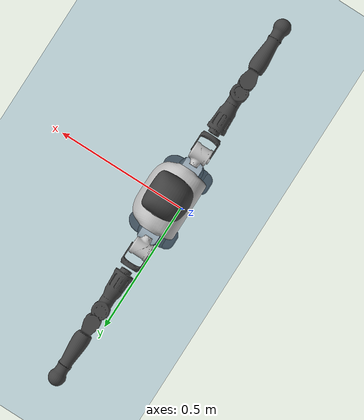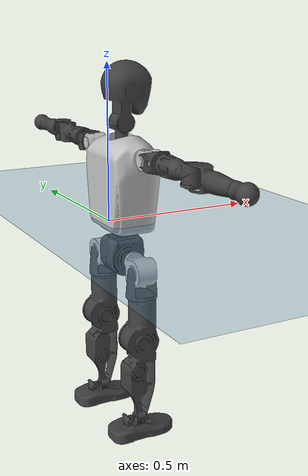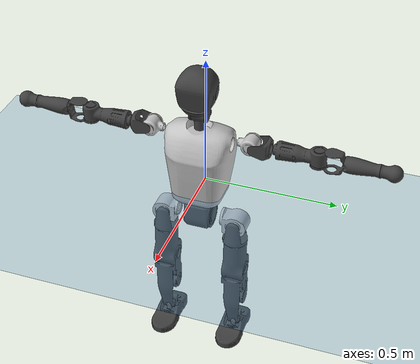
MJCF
<mujoco model="T1">
  <compiler angle="radian" assetdir="assets" balanceinertia="true" inertiafromgeom="false"/>

  <option timestep="0.005" density="1.2" viscosity="2e-05"/>

  <size nkey="1"/>

  <visual>
    <quality shadowsize="8192"/>
    <map shadowclip="0.5"/>
  </visual>

  <default>
    <default class="/">
      <joint armature="0.01" damping="0.01" frictionloss="0.1"/>
      <geom contype="0" conaffinity="0" group="1" solref="-1000 -80"/>
      <site size="0.01 0.005 0.005" group="5"/>
      <general forcelimited="true" biastype="affine" gainprm="25" biasprm="0 -25 -0.6"/>
      <default class="t1">
        <geom rgba="0.25 0.25 0.25 1"/>
        <default class="visual">
          <geom type="mesh" group="2"/>
        </default>
        <default class="collision">
          <geom group="3"/>
        </default>
        <default class="foot">
          <geom size="0.1115 0.05 0.015" type="box" condim="6" group="4" priority="1" solimp="0.015 1 0.015"/>
        </default>
        <default class="reward_collision_sphere">
          <geom group="5" rgba="1 0 0 1"/>
        </default>
      </default>
    </default>
  </default>

  <asset>
    <texture type="skybox" colorspace="auto" name="//unnamed_texture_0" builtin="gradient" rgb1="0.95 0.95 0.95" rgb2="0.95 0.95 0.95" width="100" height="600"/>
    <texture type="2d" colorspace="auto" name="texplane" builtin="checker" rgb1="0.345 0.575 0.748" rgb2="0.345 0.575 0.748" markrgb="1 1 1" width="512" height="512"/>
    <material name="MatPlane" class="/" texture="texplane" texuniform="true" texrepeat="2 2" specular="0.9"/>
    <mesh name="Trunk" class="/" file="Trunk.stl"/>
    <mesh name="H1" class="/" file="H1.stl"/>
    <mesh name="H2" class="/" file="H2.stl"/>
    <mesh name="AL1" class="/" file="AL1.stl"/>
    <mesh name="AL2" class="/" file="AL2.stl"/>
    <mesh name="AL3" class="/" file="AL3.stl"/>
    <mesh name="left_hand_link" class="/" file="left_hand_link.stl"/>
    <mesh name="AR1" class="/" file="AR1.stl"/>
    <mesh name="AR2" class="/" file="AR2.stl"/>
    <mesh name="AR3" class="/" file="AR3.stl"/>
    <mesh name="right_hand_link" class="/" file="right_hand_link.stl"/>
    <mesh name="Waist" class="/" file="Waist.stl"/>
    <mesh name="Hip_Pitch_Left" class="/" file="Hip_Pitch_Left.stl"/>
    <mesh name="Hip_Roll_Left" class="/" file="Hip_Roll_Left.stl"/>
    <mesh name="Hip_Yaw_Left" class="/" file="Hip_Yaw_Left.stl"/>
    <mesh name="Shank_Left" class="/" file="Shank_Left.stl"/>
    <mesh name="Ankle_Cross_Left" class="/" file="Ankle_Cross_Left.stl"/>
    <mesh name="left_foot_link" class="/" file="left_foot_link.stl"/>
    <mesh name="Hip_Pitch_Right" class="/" file="Hip_Pitch_Right.stl"/>
    <mesh name="Hip_Roll_Right" class="/" file="Hip_Roll_Right.stl"/>
    <mesh name="Hip_Yaw_Right" class="/" file="Hip_Yaw_Right.stl"/>
    <mesh name="Shank_Right" class="/" file="Shank_Right.stl"/>
    <mesh name="Ankle_Cross_Right" class="/" file="Ankle_Cross_Right.stl"/>
    <mesh name="right_foot_link" class="/" file="right_foot_link.stl"/>
  </asset>

  <worldbody>
    <geom name="floor" class="/" size="100 100 0.125" type="plane" group="0" material="MatPlane"/>
    <light name="toplight_shadow" class="/" pos="0 0 5" dir="0.0990148 0.0990148 -0.990148" type="directional" ambient="0.04 0.04 0.04" diffuse="0.55 0.55 0.55" specular="0.12 0.12 0.12"/>
    <light name="toplight_fill" class="/" pos="0 0 5" dir="0.0990148 0.0990148 -0.990148" type="directional" castshadow="false" ambient="0.04 0.04 0.04" diffuse="0.3 0.3 0.3" specular="0.08 0.08 0.08"/>
    <body name="trunk" childclass="t1" pos="-0.000153763 -0.00175234 -0.00144307" quat="1 -9.60488e-05 -4.01931e-05 9.75627e-06">
      <inertial pos="0.04523 0.00100298 0.111437" quat="0.999737 0.00426941 -0.0224614 0.00152318" mass="12.915" diaginertia="0.0261472 0.289292 0.065421"/>
      <joint name="//unnamed_joint_0" type="free" armature="0" damping="0" frictionloss="0"/>
      <geom name="//unnamed_geom_1" class="visual" rgba="0.76 0.76 0.76 1" mesh="Trunk"/>
      <geom name="//unnamed_geom_2" class="collision" size="0.0784683 0.104624 0.156937" pos="0.0470173 0 0.124956" type="box"/>
      <geom name="//unnamed_geom_3" class="reward_collision_sphere" size="0.120318" pos="0.0470173 0 0.10413"/>
      <geom name="//unnamed_geom_4" class="reward_collision_sphere" size="0.0156937" pos="0.0470173 0.111674 0"/>
      <geom name="//unnamed_geom_5" class="reward_collision_sphere" size="0.0156937" pos="0.0470173 -0.111674 0"/>
      <geom name="//unnamed_geom_6" class="reward_collision_sphere" size="0.0156937" pos="0.0470173 0.140578 0.187434"/>
      <geom name="//unnamed_geom_7" class="reward_collision_sphere" size="0.0156937" pos="0.0470173 -0.140578 0.187434"/>
      <site name="imu" pos="-0.013698 -0.0121983 0.00332062" size="0.0104624"/>
      <camera name="track" pos="0 -2.62762 0" quat="0.707107 0.707107 0 0" mode="trackcom"/>
      <camera name="ego_camera" pos="0.0956019 0 0.437346" quat="-0.5 -0.5 0.5 0.5"/>
      <body name="H1" pos="0.04629 -0.00244891 0.254977" quat="1 0.000122091 -0.000158937 -0.000113558">
        <inertial pos="-0.00107388 -0.000927927 0.060094" quat="0.769161 -0.00964953 0.00833991 0.638928" mass="0.496433" diaginertia="7.06584e-05 0.0008561 0.000182394"/>
        <joint name="AAHead_yaw" pos="0 0 0" axis="0.00698188 -0.0064644 0.999955" range="-1.57081 1.53187" armature="0.0110557" damping="0.0252375" frictionloss="0.101108"/>
        <geom name="//unnamed_geom_8" class="visual" mesh="H1"/>
        <body name="H2" pos="-0.000459771 -0.0018644 0.0616477" quat="1 -6.82021e-05 0.000314834 -0.000107422">
          <inertial pos="0.00379838 -0.000303278 0.101303" quat="0.988813 0.0992883 -0.0732941 -0.0837797" mass="0.715573" diaginertia="0.00060181 0.00744041 0.00216451"/>
          <joint name="Head_pitch" pos="0 0 0" axis="0.000536123 -1 -0.000129179" stiffness="8.63873e-05" range="-1.20543 0.346666" armature="0.0101682" damping="0.00959414" frictionloss="0.0897307"/>
          <geom name="//unnamed_geom_9" class="visual" mesh="H2"/>
          <geom name="//unnamed_geom_10" class="collision" size="0.0836995" pos="0.00783622 0 0.114543"/>
          <geom name="//unnamed_geom_11" class="reward_collision_sphere" size="0.094162" pos="0.0156724 0 0.10413"/>
        </body>
      </body>
      <body name="AL1" pos="0.0431409 0.139116 0.225768" quat="0.999999 0.000623816 0.000730242 -0.000794984">
        <inertial pos="-0.000544557 0.056509 -0.00240236" quat="0.500023 0.492035 -0.510769 0.496984" mass="0.615246" diaginertia="0.000414567 0.00521094 0.000355789"/>
        <joint name="Left_Shoulder_Pitch" pos="0 0 0" axis="-0.000951241 0.999999 -0.00123533" stiffness="0.00151571" range="-3.30141 1.26891" armature="0.0102312" damping="0" frictionloss="0.105905"/>
        <geom name="//unnamed_geom_12" class="visual" rgba="0.76 0.76 0.76 1" mesh="AL1"/>
        <body name="AL2" pos="0.000550991 0.0645103 -0.00285189" quat="0.999999 0.00124403 -0.000363928 -0.000340915">
          <inertial pos="0.00492392 0.0510318 0.0025664" quat="0.489784 0.508337 -0.490146 0.511334" mass="0.186224" diaginertia="0.000116631 0.001335 0.000218729"/>
          <joint name="Left_Shoulder_Roll" pos="0 0 0" axis="-0.999991 0.00280772 -0.00322984" range="-1.57636 1.74243" armature="0.0107852" damping="0.00499011" frictionloss="0.104454"/>
          <geom name="//unnamed_geom_13" class="visual" mesh="AL2"/>
          <body name="AL3" pos="0.000798936 0.0804722 0.0031984" quat="1 9.23147e-05 -0.000130898 -0.000161401">
            <inertial pos="-0.00176757 0.111174 -0.00297038" quat="0.702886 0.711178 0.0079908 -0.0106699" mass="1.24631" diaginertia="0.00387951 0.0515286 0.00079331"/>
            <joint name="Left_Elbow_Pitch" pos="0 0 0" axis="0.000266813 -0.999933 -0.0115312" stiffness="0.00518307" range="-2.28319 2.30524" armature="0.0107756" damping="0.0240073" frictionloss="0.105216"/>
            <geom name="//unnamed_geom_14" class="visual" mesh="AL3"/>
            <geom name="//unnamed_geom_15" class="collision" size="0.0313873 0.0784683" pos="0 0.0656905 0" quat="0.707105 0.707108 0 0" type="cylinder"/>
            <geom name="//unnamed_geom_16" class="reward_collision_sphere" size="0.0376648"/>
            <body name="left_hand_link" pos="0.00256249 0.195358 -0.00118" quat="1 -0.000205397 -0.00013929 -0.000109243">
              <inertial pos="-0.00096382 0.144961 -0.000520055" quat="0.708335 0.705861 -0.00138813 0.00451774" mass="0.372717" diaginertia="0.00233641 0.0320157 0.000265939"/>
              <joint name="Left_Elbow_Yaw" pos="0 0 0" axis="-9.75839e-05 -0.00290388 0.999996" stiffness="0.00432703" range="-2.48011 0.0171229" armature="0.0103745" damping="0.00688844" frictionloss="0.118346"/>
              <geom name="//unnamed_geom_17" class="visual" mesh="left_hand_link"/>
              <geom name="//unnamed_geom_18" class="collision" size="0.0313873 0.0915464" pos="0 0.170795 0" quat="0.707105 0.707108 0 0" type="cylinder"/>
              <geom name="//unnamed_geom_19" class="reward_collision_sphere" size="0.0523122"/>
              <geom name="//unnamed_geom_20" class="reward_collision_sphere" size="0.0366185" pos="0 0.144519 0"/>
              <geom name="//unnamed_geom_21" class="reward_collision_sphere" size="0.0366185" pos="0 0.282469 0"/>
            </body>
          </body>
        </body>
      </body>
      <body name="AR1" pos="0.0466157 -0.138974 0.227026" quat="0.999999 0.000515971 0.00069117 -0.00114089">
        <inertial pos="-0.0035836 -0.0588434 -0.00185887" quat="0.501834 0.489811 -0.509792 0.498357" mass="0.640578" diaginertia="0.00041424 0.00534824 0.000380287"/>
        <joint name="Right_Shoulder_Pitch" pos="0 0 0" axis="-0.00684636 -0.999975 -0.00185324" stiffness="0.000365374" range="-1.23056 3.30598" armature="0.0100695" damping="0" frictionloss="0.0970002"/>
        <geom name="//unnamed_geom_22" class="visual" rgba="0.76 0.76 0.76 1" mesh="AR1"/>
        <body name="AR2" pos="-0.000734827 -0.0612137 0.00220937" quat="1 -5.1273e-06 -0.000159633 7.00689e-05">
          <inertial pos="0.000155852 -0.050759 6.24196e-05" quat="0.510738 0.48565 -0.518963 0.483703" mass="0.184528" diaginertia="0.000125105 0.00136632 0.000228454"/>
          <joint name="Right_Shoulder_Roll" pos="0 0 0" axis="-0.999998 0.0014379 -0.0013799" range="-1.74433 1.56929" armature="0.0104175" damping="0.00319728" frictionloss="0.108239"/>
          <geom name="//unnamed_geom_23" class="visual" mesh="AR2"/>
          <body name="AR3" pos="0.00161499 -0.0772743 -0.00226246" quat="0.999999 -0.000150013 -0.000742938 -0.00132045">
            <inertial pos="0.00092756 -0.111141 -0.000301151" quat="0.707275 0.706796 -0.00895873 0.0110144" mass="1.2039" diaginertia="0.00394252 0.051037 0.000771423"/>
            <joint name="Right_Elbow_Pitch" pos="0 0 0" axis="-0.00661188 0.999967 -0.00480312" stiffness="0.000753621" range="-2.25488 2.29174" armature="0.01046" damping="0.0106154" frictionloss="0.103864"/>
            <geom name="//unnamed_geom_24" class="visual" mesh="AR3"/>
            <geom name="//unnamed_geom_25" class="collision" size="0.0313873 0.0784683" pos="0 -0.0656905 0" quat="0.707105 0.707108 0 0" type="cylinder"/>
            <geom name="//unnamed_geom_26" class="reward_collision_sphere" size="0.0376648"/>
            <body name="right_hand_link" pos="-0.00164293 -0.190999 0.000931419" quat="0.999999 -3.74409e-05 0.000452986 0.00138755">
              <inertial pos="-0.000217827 -0.141125 0.00250089" quat="0.706552 0.707661 -0.000394641 -9.11894e-05" mass="0.382811" diaginertia="0.00249377 0.0329756 0.000263834"/>
              <joint name="Right_Elbow_Yaw" pos="0 0 0" axis="0.00329736 -0.0025975 0.999991" range="0.0529487 2.43859" armature="0.0110475" damping="0.00461261" frictionloss="0.113363"/>
              <geom name="//unnamed_geom_27" class="visual" mesh="right_hand_link"/>
              <geom name="//unnamed_geom_28" class="collision" size="0.0313873 0.0915464" pos="0 -0.170795 0" quat="0.707105 0.707108 0 0" type="cylinder"/>
              <geom name="//unnamed_geom_29" class="reward_collision_sphere" size="0.0523122"/>
              <geom name="//unnamed_geom_30" class="reward_collision_sphere" size="0.0366185" pos="0 -0.144519 0"/>
              <geom name="//unnamed_geom_31" class="reward_collision_sphere" size="0.0366185" pos="0 -0.282469 0"/>
            </body>
          </body>
        </body>
      </body>
      <body name="Waist" pos="0.0449621 -0.00123065 -0.120482" quat="1 0.000844877 -5.57202e-05 0.000430317">
        <inertial pos="0.00116337 -0.000210996 0.00743874" quat="0.983327 0.00427136 -0.181795 0.00038173" mass="2.75701" diaginertia="0.00151101 0.0202351 0.00572231"/>
        <joint name="Waist" pos="0 0 0" axis="0.000493252 -0.00865963 0.999962" range="-1.62411 1.58034" armature="0.0118099" damping="0.0227024" frictionloss="0.102977"/>
        <geom name="//unnamed_geom_32" class="visual" mesh="Waist"/>
        <body name="Hip_Pitch_Left" pos="-3.29799e-05 0.141028 -0.000823263" quat="1 3.62957e-05 0.000206169 -8.37634e-05">
          <inertial pos="0.00123924 -0.00715848 -0.0161744" quat="0.973194 0.228511 0.0256239 0.00442013" mass="1.19958" diaginertia="0.000536421 0.00594643 0.00155252"/>
          <joint name="Left_Hip_Pitch" pos="0 0 0" axis="-0.00407493 0.999988 0.00261848" stiffness="0.00808239" range="-1.79384 1.60654" armature="0.0112578" damping="0.0233401" frictionloss="0.113348"/>
          <geom name="//unnamed_geom_33" class="visual" rgba="0.76 0.76 0.76 1" mesh="Hip_Pitch_Left"/>
          <body name="Hip_Roll_Left" pos="0.00137031 -0.00312931 -0.0228706" quat="1 -9.90936e-05 0.000532551 0.000304553">
            <inertial pos="-0.00173279 0.000105268 -0.0534039" quat="0.709499 -0.00724063 -0.0117721 0.704571" mass="0.441771" diaginertia="0.000509028 0.00626124 0.000645972"/>
            <joint name="Left_Hip_Roll" pos="0 0 0" axis="-0.999947 -4.70064e-05 0.0103417" stiffness="0.00865478" range="-1.56855 0.203145" armature="0.0113834" damping="0.00395133" frictionloss="0.0902883"/>
            <geom name="//unnamed_geom_34" class="visual" mesh="Hip_Roll_Left"/>
            <geom name="//unnamed_geom_35" class="reward_collision_sphere" size="0.0575434"/>
            <body name="Hip_Yaw_Left" pos="-0.00302404 7.86808e-05 -0.0848298" quat="1 0.00011243 -0.00020172 -0.000102382">
              <inertial pos="-0.00785418 0.00105484 -0.0928964" quat="0.696912 -0.0367656 -0.0280383 0.715665" mass="2.4566" diaginertia="0.00772424 0.0972947 0.00322328"/>
              <joint name="Left_Hip_Yaw" pos="0 0 0" axis="0.00401269 -0.00274268 -0.999988" range="-1.0637 1.04638" armature="0.0105595" damping="0" frictionloss="0.101791"/>
              <geom name="//unnamed_geom_36" class="visual" mesh="Hip_Yaw_Left"/>
              <geom name="//unnamed_geom_37" class="collision" size="0.0523122 0.0836995" type="cylinder"/>
              <body name="Shank_Left" pos="-0.00985887 -0.000758787 -0.13813" quat="1 0.000177246 0.00039118 5.63031e-05">
                <inertial pos="-0.00477145 0.00276573 -0.127385" quat="0.997593 0.0010295 -0.0231602 0.0653531" mass="1.97796" diaginertia="0.0103686 0.137705 0.00230839"/>
                <joint name="Left_Knee_Pitch" pos="0 0 0" axis="-0.00164016 0.999998 -0.00140358" stiffness="0.00714568" range="0.0480422 2.29207" armature="0.0103846" damping="0.0162735" frictionloss="0.103129"/>
                <geom name="//unnamed_geom_38" class="visual" mesh="Shank_Left"/>
                <geom name="//unnamed_geom_39" class="collision" size="0.0523122 0.0784683" pos="0 0 -0.124956" type="cylinder"/>
                <geom name="//unnamed_geom_40" class="reward_collision_sphere" size="0.0680059"/>
                <body name="Ankle_Cross_Left" pos="0.000803106 -0.00105544 -0.289436" quat="1 -0.000101596 3.0107e-05 0.000377467">
                  <inertial pos="-0.00499896 0.00287864 -0.00563892" quat="0.454892 0.547617 0.545142 0.44273" mass="0.0874058" diaginertia="8.93494e-06 9.80591e-05 1.4028e-05"/>
                  <joint name="Left_Ankle_Pitch" pos="0 0 0" axis="0.000777819 0.999998 -0.00175143" range="-0.833051 0.34466" armature="0.00923742" damping="0.00227613" frictionloss="0.110573"/>
                  <geom name="//unnamed_geom_41" class="visual" mesh="Ankle_Cross_Left"/>
                  <body name="left_foot_link" pos="-0.00220513 -0.00269017 -0.0112209" quat="0.999999 0.000942205 0.000619844 3.02473e-05">
                    <inertial pos="-0.00297344 0.000181552 -0.0119681" quat="-0.00202851 0.616362 -0.000127033 0.78746" mass="0.752758" diaginertia="0.000754969 0.00938362 0.00262734"/>
                    <joint name="Left_Ankle_Roll" pos="0 0 0" axis="-0.999997 9.90064e-05 0.00245926" range="-0.455698 0.43973" armature="0.0103471" damping="0.00373156" frictionloss="0.10571"/>
                    <geom name="//unnamed_geom_42" class="visual" mesh="left_foot_link"/>
                    <geom name="left_foot" class="foot" size="0.111706 0.0473625 0.0147201" pos="0.00783622 0 -0.0156195"/>
                    <geom name="//unnamed_geom_44" class="reward_collision_sphere" size="0.0544047" pos="0.00783622 0 -0.0156195"/>
                    <geom name="//unnamed_geom_45" class="reward_collision_sphere" size="0.0313873" pos="0.0744441 -0.0302177 -0.0156195"/>
                    <geom name="//unnamed_geom_46" class="reward_collision_sphere" size="0.0313873" pos="-0.0548536 -0.0302177 -0.0156195"/>
                    <site name="left_foot" class="foot" pos="0.00783622 0 -0.0156195" size="0.0104624"/>
                  </body>
                </body>
              </body>
            </body>
          </body>
        </body>
        <body name="Hip_Pitch_Right" pos="0.000244311 -0.138268 0.00198057" quat="1 -0.00034762 -0.000562777 0.000556617">
          <inertial pos="-0.00229997 0.00859863 -0.0163996" quat="0.972869 -0.230559 0.018968 -0.00277501" mass="1.21335" diaginertia="0.0005532 0.00587082 0.00156913"/>
          <joint name="Right_Hip_Pitch" pos="0 0 0" axis="0.000520132 -1 0.000554823" range="-1.56852 1.77665" armature="0.00898605" damping="0.0103597" frictionloss="0.106282"/>
          <geom name="//unnamed_geom_47" class="visual" rgba="0.76 0.76 0.76 1" mesh="Hip_Pitch_Right"/>
          <body name="Hip_Roll_Right" pos="0.000981347 -0.000583024 -0.0231216" quat="0.999999 0.000304564 -0.000930199 0.00108899">
            <inertial pos="0.0014122 0.00155387 -0.0529985" quat="0.70256 -0.00781405 -0.00441258 0.711568" mass="0.425776" diaginertia="0.000515032 0.00603266 0.000619288"/>
            <joint name="Right_Hip_Roll" pos="0 0 0" axis="-0.999999 -0.000999838 -0.00120158" range="-0.185075 1.55838" armature="0.0103993" damping="0.0139511" frictionloss="0.118374"/>
            <geom name="//unnamed_geom_48" class="visual" mesh="Hip_Roll_Right"/>
            <geom name="//unnamed_geom_49" class="reward_collision_sphere" size="0.0575434"/>
            <body name="Hip_Yaw_Right" pos="-0.00166582 -0.000927905 -0.0853915" quat="1 -0.000152827 -0.000521229 -9.21821e-05">
              <inertial pos="-0.0051534 -0.00285085 -0.0946215" quat="0.715852 -0.0301176 -0.0404971 0.696426" mass="2.51181" diaginertia="0.00761333 0.103627 0.00309622"/>
              <joint name="Right_Hip_Yaw" pos="0 0 0" axis="-0.00339381 0.00234491 -0.999991" range="-1.01588 1.01415" armature="0.0116858" damping="0.00801289" frictionloss="0.105084"/>
              <geom name="//unnamed_geom_50" class="visual" mesh="Hip_Yaw_Right"/>
              <geom name="//unnamed_geom_51" class="collision" size="0.0523122 0.0836995" type="cylinder"/>
              <body name="Shank_Right" pos="-0.0127036 0.000570998 -0.138031" quat="0.999999 0.000744872 0.000918889 0.000689829">
                <inertial pos="-0.00500894 0.000187663 -0.130409" quat="0.999074 -0.000164844 -0.0279861 -0.0326774" mass="2.07128" diaginertia="0.0103974 0.133588 0.00245459"/>
                <joint name="Right_Knee_Pitch" pos="0 0 0" axis="0.000521009 -0.999943 -0.0107053" stiffness="0.00914778" range="-2.30298 0.0279363" armature="0.0111591" damping="0.0192715" frictionloss="0.106333"/>
                <geom name="//unnamed_geom_52" class="visual" mesh="Shank_Right"/>
                <geom name="//unnamed_geom_53" class="collision" size="0.0523122 0.0784683" pos="0 0 -0.124956" type="cylinder"/>
                <geom name="//unnamed_geom_54" class="reward_collision_sphere" size="0.0680059"/>
                <body name="Ankle_Cross_Right" pos="-0.00204797 0.00035034 -0.2907" quat="1 7.93707e-05 -5.23589e-05 1.19097e-05">
                  <inertial pos="-0.00329727 -0.00255791 -0.00844813" quat="0.446402 0.554203 0.543722 0.444917" mass="0.0877183" diaginertia="8.83424e-06 0.000103992 1.46766e-05"/>
                  <joint name="Right_Ankle_Pitch" pos="0 0 0" axis="0.00233851 -0.999927 -0.0118213" range="-0.397271 0.824503" armature="0.0105354" damping="0.00626035" frictionloss="0.103622"/>
                  <geom name="//unnamed_geom_55" class="visual" mesh="Ankle_Cross_Right"/>
                  <body name="right_foot_link" pos="0.00180017 -0.00107912 -0.0148333" quat="1 0.000114945 -7.92929e-06 -0.00015211">
                    <inertial pos="-0.00135038 -0.000457641 -0.00953429" quat="-0.000563965 0.620134 0.00212769 0.784493" mass="0.779188" diaginertia="0.000787674 0.00895676 0.00262431"/>
                    <joint name="Right_Ankle_Roll" pos="0 0 0" axis="-0.999924 0.00206398 -0.0121268" range="-0.469989 0.438633" armature="0.00987092" damping="0.00161458" frictionloss="0.100958"/>
                    <geom name="//unnamed_geom_56" class="visual" mesh="right_foot_link"/>
                    <geom name="right_foot" class="foot" size="0.108458 0.0449842 0.0145352" pos="0.00783622 0 -0.0156195"/>
                    <geom name="//unnamed_geom_58" class="reward_collision_sphere" size="0.0418498"/>
                    <geom name="//unnamed_geom_59" class="reward_collision_sphere" size="0.0313873" pos="0.00783622 0 -0.0156195"/>
                    <geom name="//unnamed_geom_60" class="reward_collision_sphere" size="0.0313873" pos="0.0744441 0.0302177 -0.0156195"/>
                    <geom name="//unnamed_geom_61" class="reward_collision_sphere" size="0.0313873" pos="-0.0548536 0.0302177 -0.0156195"/>
                    <site name="right_foot" class="foot" pos="0.00783622 0 -0.0156195" size="0.0104624"/>
                  </body>
                </body>
              </body>
            </body>
          </body>
        </body>
      </body>
    </body>
  </worldbody>

  <contact>
    <pair class="/" geom1="floor" geom2="left_foot" name="//unnamed_contact_0"/>
    <pair class="/" geom1="floor" geom2="right_foot" name="//unnamed_contact_1"/>
  </contact>

  <actuator>
    <general name="AAHead_yaw" class="/" joint="AAHead_yaw" forcerange="-7.59271 7.59271" gainprm="24.1871" biasprm="0 -24.1871 -0.616146"/>
    <general name="Head_pitch" class="/" joint="Head_pitch" forcerange="-7.31807 7.31807" gainprm="24.1871" biasprm="0 -24.1871 -0.616146"/>
    <general name="Left_Shoulder_Pitch" class="/" joint="Left_Shoulder_Pitch" forcerange="-16.7074 16.7074" gainprm="24.1871" biasprm="0 -24.1871 -0.616146"/>
    <general name="Left_Shoulder_Roll" class="/" joint="Left_Shoulder_Roll" forcerange="-17.7737 17.7737" gainprm="24.1871" biasprm="0 -24.1871 -0.616146"/>
    <general name="Left_Elbow_Pitch" class="/" joint="Left_Elbow_Pitch" forcerange="-18.7614 18.7614" gainprm="24.1871" biasprm="0 -24.1871 -0.616146"/>
    <general name="Left_Elbow_Yaw" class="/" joint="Left_Elbow_Yaw" forcerange="-18.0444 18.0444" gainprm="24.1871" biasprm="0 -24.1871 -0.616146"/>
    <general name="Right_Shoulder_Pitch" class="/" joint="Right_Shoulder_Pitch" forcerange="-20.106 20.106" gainprm="24.1871" biasprm="0 -24.1871 -0.616146"/>
    <general name="Right_Shoulder_Roll" class="/" joint="Right_Shoulder_Roll" forcerange="-16.9272 16.9272" gainprm="24.1871" biasprm="0 -24.1871 -0.616146"/>
    <general name="Right_Elbow_Pitch" class="/" joint="Right_Elbow_Pitch" forcerange="-20.0827 20.0827" gainprm="24.1871" biasprm="0 -24.1871 -0.616146"/>
    <general name="Right_Elbow_Yaw" class="/" joint="Right_Elbow_Yaw" forcerange="-19.8067 19.8067" gainprm="24.1871" biasprm="0 -24.1871 -0.616146"/>
    <general name="Waist" class="/" joint="Waist" forcerange="-33.9189 33.9189" gainprm="24.1871" biasprm="0 -24.1871 -0.616146"/>
    <general name="Left_Hip_Pitch" class="/" joint="Left_Hip_Pitch" forcerange="-46.3711 46.3711" gainprm="24.1871" biasprm="0 -24.1871 -0.616146"/>
    <general name="Left_Hip_Roll" class="/" joint="Left_Hip_Roll" forcerange="-34.5583 34.5583" gainprm="24.1871" biasprm="0 -24.1871 -0.616146"/>
    <general name="Left_Hip_Yaw" class="/" joint="Left_Hip_Yaw" forcerange="-28.4364 28.4364" gainprm="24.1871" biasprm="0 -24.1871 -0.616146"/>
    <general name="Left_Knee_Pitch" class="/" joint="Left_Knee_Pitch" forcerange="-60.5216 60.5216" gainprm="24.1871" biasprm="0 -24.1871 -0.616146"/>
    <general name="Left_Ankle_Pitch" class="/" joint="Left_Ankle_Pitch" forcerange="-20.5887 20.5887" gainprm="24.1871" biasprm="0 -24.1871 -0.616146"/>
    <general name="Left_Ankle_Roll" class="/" joint="Left_Ankle_Roll" forcerange="-17.0167 17.0167" gainprm="24.1871" biasprm="0 -24.1871 -0.616146"/>
    <general name="Right_Hip_Pitch" class="/" joint="Right_Hip_Pitch" forcerange="-47.2343 47.2343" gainprm="24.1871" biasprm="0 -24.1871 -0.616146"/>
    <general name="Right_Hip_Roll" class="/" joint="Right_Hip_Roll" forcerange="-31.6108 31.6108" gainprm="24.1871" biasprm="0 -24.1871 -0.616146"/>
    <general name="Right_Hip_Yaw" class="/" joint="Right_Hip_Yaw" forcerange="-33.2001 33.2001" gainprm="24.1871" biasprm="0 -24.1871 -0.616146"/>
    <general name="Right_Knee_Pitch" class="/" joint="Right_Knee_Pitch" forcerange="-62.5735 62.5735" gainprm="24.1871" biasprm="0 -24.1871 -0.616146"/>
    <general name="Right_Ankle_Pitch" class="/" joint="Right_Ankle_Pitch" forcerange="-21.0422 21.0422" gainprm="24.1871" biasprm="0 -24.1871 -0.616146"/>
    <general name="Right_Ankle_Roll" class="/" joint="Right_Ankle_Roll" forcerange="-14.0644 14.0644" gainprm="24.1871" biasprm="0 -24.1871 -0.616146"/>
  </actuator>

  <sensor>
    <gyro site="imu" name="imu_angular_velocity"/>
    <velocimeter site="imu" name="imu_linear_velocity"/>
    <framelinvel objtype="site" objname="left_foot" name="left_foot_global_linear_velocity"/>
    <framelinvel objtype="site" objname="right_foot" name="right_foot_global_linear_velocity"/>
  </sensor>

  <keyframe>
    <key name="home" qpos="0 0 0.6385 1 0 0 0 0 0 0 1.4 0 -0.4 0 -1.4 0 0.4 0 -0.4 0 0 0.8 -0.4 0 0.4 0 0 -0.8 0.4 0"/>
  </keyframe>
</mujoco>
